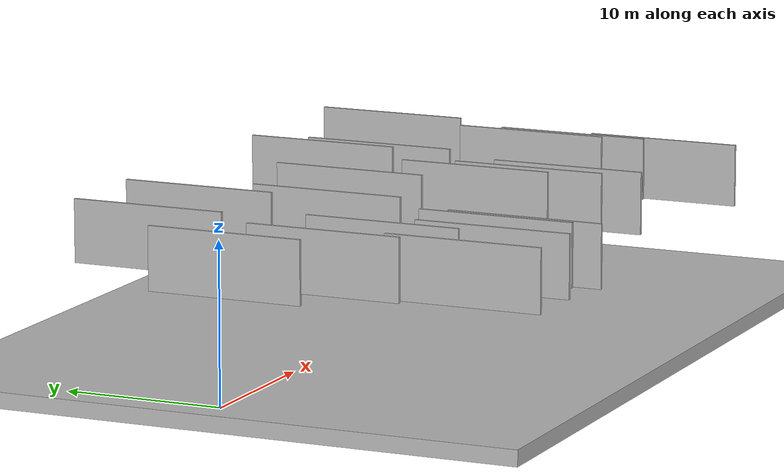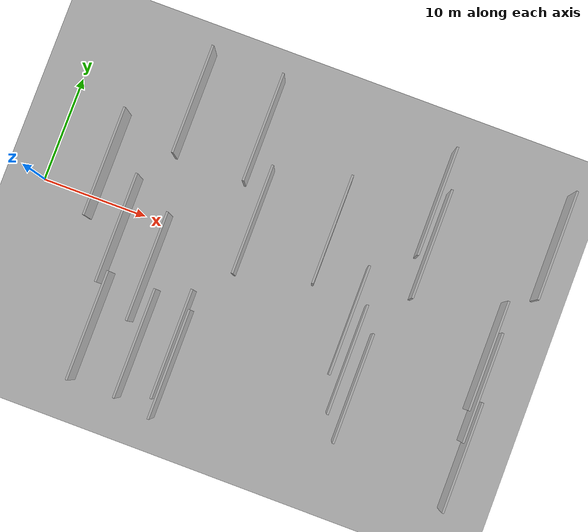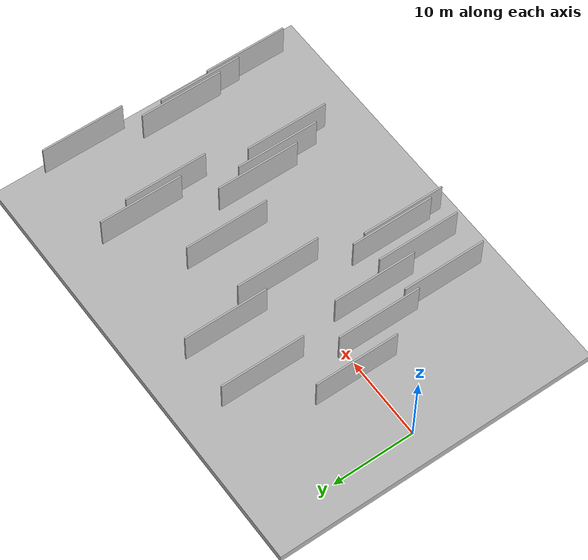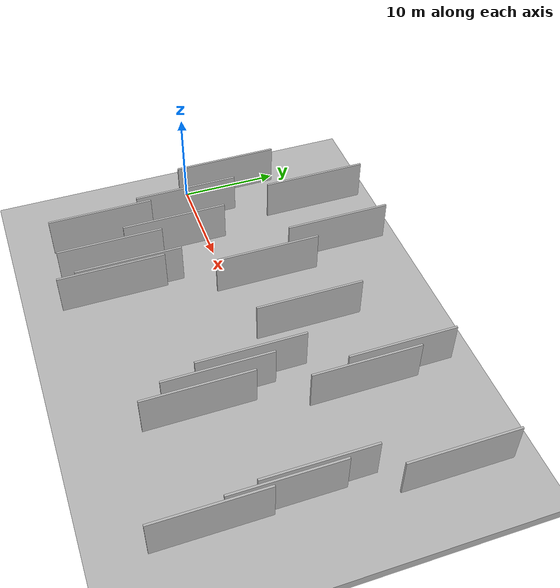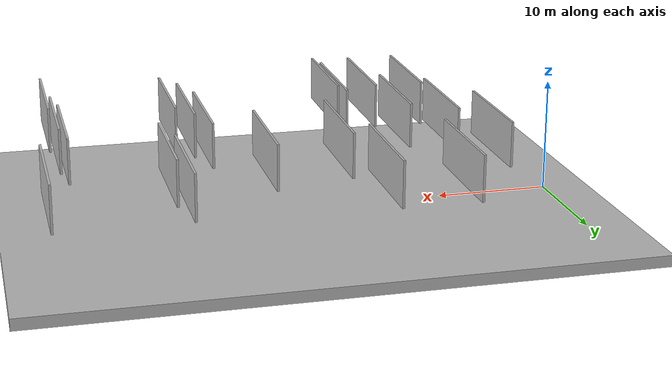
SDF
<?xml version="1.0" encoding="utf-8"?>

<sdf version="1.6">

   <world name="default">

      <gui fullscreen="0">

         <camera name="user_camera">

            <pose>-15 0 4.57585 0 0 0</pose>

            <view_controller>orbit</view_controller>

         </camera>

      </gui>

      <scene>

         <sky>

           <clouds>

             <speed>12</speed>

           </clouds>

         </sky>

         <ambient>0.4 0.4 0.4 1</ambient>

         <background>0.7 0.7 0.7 1</background>

         <shadows>1</shadows>

      </scene>

      <gravity>0 0 -9.8066</gravity>

      <magnetic_field>6e-06 2.3e-05 -4.2e-05</magnetic_field>

      <physics default="0" name="default_physics" type="ode">

         <ode>

            <solver>

               <type>quick</type>

               <iters>10</iters>

               <sor>1.0</sor>

               <use_dynamic_moi_rescaling>0</use_dynamic_moi_rescaling>

            </solver>

            <constraints>

               <cfm>0</cfm>

               <erp>0.2</erp>

               <contact_max_correcting_vel>100</contact_max_correcting_vel>

               <contact_surface_layer>0.001</contact_surface_layer>

            </constraints>

         </ode>

         <max_step_size>0.004</max_step_size>

         <real_time_factor>1</real_time_factor>

         <real_time_update_rate>250</real_time_update_rate>

      </physics>

      <light name="sun" type="directional">

         <cast_shadows>1</cast_shadows>

         <pose>0 0 10 0 0 0</pose>

         <diffuse>0.8 0.8 0.8 1</diffuse>

         <specular>0.2 0.2 0.2 1</specular>

         <attenuation>

            <range>1000</range>

            <constant>0.9</constant>

            <linear>0.01</linear>

            <quadratic>0.001</quadratic>

         </attenuation>

         <direction>-0.5 0.1 -0.9</direction>

      </light>

      <include>

         <name>ground_plane_1</name>

         <uri>model://HANNAS_ground_plane</uri>

         <pose>0 0 0  0 0 0</pose>

      </include>

      <include>

         <name>ground_plane_2</name>

         <uri>model://HANNAS_ground_plane</uri>

         <pose>100 0 0  0 0 0</pose>

      </include>

      <model name="HANNAS_wall_1">

         <static>1</static>

         <pose frame="">34.4727 9.5673 5.0 0.000000 0.000000 1.570796</pose>

         <link name="link">

            <pose frame="">0 0 2.00 0 0 0</pose>

            <collision name="collision">

               <geometry>

                  <box>

                     <size>10.00 0.2 4.00</size>

                  </box>

               </geometry>

               <max_contacts>10</max_contacts>

               <surface>

                  <contact>

                     <ode/>

                  </contact>

                  <bounce/>

                  <friction>

                     <torsional>

                        <ode/>

                     </torsional>

                     <ode/>

                  </friction>

               </surface>

            </collision>

            <visual name="visual">

               <cast_shadows>0</cast_shadows>

               <geometry>

                  <box>

                     <size>10.00 0.2 4.00</size>

                  </box>

               </geometry>

               <material>

                  <script>

                     <uri>model://HANNAS_wall/materials/scripts</uri>

                     <uri>model://HANNAS_wall/materials/textures</uri>

                     <name>vrc/HANNAS_wall</name>

                  </script>

               </material>

            </visual>

            <self_collide>0</self_collide>

            <enable_wind>0</enable_wind>

            <kinematic>0</kinematic>

         </link>

      </model>

      <model name="HANNAS_wall_2">

         <static>1</static>

         <pose frame="">43.1520 -1.4141 5.0 0.000000 0.000000 1.570796</pose>

         <link name="link">

            <pose frame="">0 0 2.00 0 0 0</pose>

            <collision name="collision">

               <geometry>

                  <box>

                     <size>10.00 0.2 4.00</size>

                  </box>

               </geometry>

               <max_contacts>10</max_contacts>

               <surface>

                  <contact>

                     <ode/>

                  </contact>

                  <bounce/>

                  <friction>

                     <torsional>

                        <ode/>

                     </torsional>

                     <ode/>

                  </friction>

               </surface>

            </collision>

            <visual name="visual">

               <cast_shadows>0</cast_shadows>

               <geometry>

                  <box>

                     <size>10.00 0.2 4.00</size>

                  </box>

               </geometry>

               <material>

                  <script>

                     <uri>model://HANNAS_wall/materials/scripts</uri>

                     <uri>model://HANNAS_wall/materials/textures</uri>

                     <name>vrc/HANNAS_wall</name>

                  </script>

               </material>

            </visual>

            <self_collide>0</self_collide>

            <enable_wind>0</enable_wind>

            <kinematic>0</kinematic>

         </link>

      </model>

      <model name="HANNAS_wall_3">

         <static>1</static>

         <pose frame="">18.0984 10.3408 5.0 0.000000 0.000000 1.570796</pose>

         <link name="link">

            <pose frame="">0 0 2.00 0 0 0</pose>

            <collision name="collision">

               <geometry>

                  <box>

                     <size>10.00 0.2 4.00</size>

                  </box>

               </geometry>

               <max_contacts>10</max_contacts>

               <surface>

                  <contact>

                     <ode/>

                  </contact>

                  <bounce/>

                  <friction>

                     <torsional>

                        <ode/>

                     </torsional>

                     <ode/>

                  </friction>

               </surface>

            </collision>

            <visual name="visual">

               <cast_shadows>0</cast_shadows>

               <geometry>

                  <box>

                     <size>10.00 0.2 4.00</size>

                  </box>

               </geometry>

               <material>

                  <script>

                     <uri>model://HANNAS_wall/materials/scripts</uri>

                     <uri>model://HANNAS_wall/materials/textures</uri>

                     <name>vrc/HANNAS_wall</name>

                  </script>

               </material>

            </visual>

            <self_collide>0</self_collide>

            <enable_wind>0</enable_wind>

            <kinematic>0</kinematic>

         </link>

      </model>

      <model name="HANNAS_wall_4">

         <static>1</static>

         <pose frame="">44.0207 -10.3526 5.0 0.000000 0.000000 1.570796</pose>

         <link name="link">

            <pose frame="">0 0 2.00 0 0 0</pose>

            <collision name="collision">

               <geometry>

                  <box>

                     <size>10.00 0.2 4.00</size>

                  </box>

               </geometry>

               <max_contacts>10</max_contacts>

               <surface>

                  <contact>

                     <ode/>

                  </contact>

                  <bounce/>

                  <friction>

                     <torsional>

                        <ode/>

                     </torsional>

                     <ode/>

                  </friction>

               </surface>

            </collision>

            <visual name="visual">

               <cast_shadows>0</cast_shadows>

               <geometry>

                  <box>

                     <size>10.00 0.2 4.00</size>

                  </box>

               </geometry>

               <material>

                  <script>

                     <uri>model://HANNAS_wall/materials/scripts</uri>

                     <uri>model://HANNAS_wall/materials/textures</uri>

                     <name>vrc/HANNAS_wall</name>

                  </script>

               </material>

            </visual>

            <self_collide>0</self_collide>

            <enable_wind>0</enable_wind>

            <kinematic>0</kinematic>

         </link>

      </model>

      <model name="HANNAS_wall_5">

         <static>1</static>

         <pose frame="">17.6958 -11.6697 5.0 0.000000 0.000000 1.570796</pose>

         <link name="link">

            <pose frame="">0 0 2.00 0 0 0</pose>

            <collision name="collision">

               <geometry>

                  <box>

                     <size>10.00 0.2 4.00</size>

                  </box>

               </geometry>

               <max_contacts>10</max_contacts>

               <surface>

                  <contact>

                     <ode/>

                  </contact>

                  <bounce/>

                  <friction>

                     <torsional>

                        <ode/>

                     </torsional>

                     <ode/>

                  </friction>

               </surface>

            </collision>

            <visual name="visual">

               <cast_shadows>0</cast_shadows>

               <geometry>

                  <box>

                     <size>10.00 0.2 4.00</size>

                  </box>

               </geometry>

               <material>

                  <script>

                     <uri>model://HANNAS_wall/materials/scripts</uri>

                     <uri>model://HANNAS_wall/materials/textures</uri>

                     <name>vrc/HANNAS_wall</name>

                  </script>

               </material>

            </visual>

            <self_collide>0</self_collide>

            <enable_wind>0</enable_wind>

            <kinematic>0</kinematic>

         </link>

      </model>

      <model name="HANNAS_wall_6">

         <static>1</static>

         <pose frame="">20.0327 2.5220 5.0 0.000000 0.000000 1.570796</pose>

         <link name="link">

            <pose frame="">0 0 2.00 0 0 0</pose>

            <collision name="collision">

               <geometry>

                  <box>

                     <size>10.00 0.2 4.00</size>

                  </box>

               </geometry>

               <max_contacts>10</max_contacts>

               <surface>

                  <contact>

                     <ode/>

                  </contact>

                  <bounce/>

                  <friction>

                     <torsional>

                        <ode/>

                     </torsional>

                     <ode/>

                  </friction>

               </surface>

            </collision>

            <visual name="visual">

               <cast_shadows>0</cast_shadows>

               <geometry>

                  <box>

                     <size>10.00 0.2 4.00</size>

                  </box>

               </geometry>

               <material>

                  <script>

                     <uri>model://HANNAS_wall/materials/scripts</uri>

                     <uri>model://HANNAS_wall/materials/textures</uri>

                     <name>vrc/HANNAS_wall</name>

                  </script>

               </material>

            </visual>

            <self_collide>0</self_collide>

            <enable_wind>0</enable_wind>

            <kinematic>0</kinematic>

         </link>

      </model>

      <model name="HANNAS_wall_7">

         <static>1</static>

         <pose frame="">9.2825 -2.2508 5.0 0.000000 0.000000 1.570796</pose>

         <link name="link">

            <pose frame="">0 0 2.00 0 0 0</pose>

            <collision name="collision">

               <geometry>

                  <box>

                     <size>10.00 0.2 4.00</size>

                  </box>

               </geometry>

               <max_contacts>10</max_contacts>

               <surface>

                  <contact>

                     <ode/>

                  </contact>

                  <bounce/>

                  <friction>

                     <torsional>

                        <ode/>

                     </torsional>

                     <ode/>

                  </friction>

               </surface>

            </collision>

            <visual name="visual">

               <cast_shadows>0</cast_shadows>

               <geometry>

                  <box>

                     <size>10.00 0.2 4.00</size>

                  </box>

               </geometry>

               <material>

                  <script>

                     <uri>model://HANNAS_wall/materials/scripts</uri>

                     <uri>model://HANNAS_wall/materials/textures</uri>

                     <name>vrc/HANNAS_wall</name>

                  </script>

               </material>

            </visual>

            <self_collide>0</self_collide>

            <enable_wind>0</enable_wind>

            <kinematic>0</kinematic>

         </link>

      </model>

      <model name="HANNAS_wall_8">

         <static>1</static>

         <pose frame="">6.2477 2.7773 5.0 0.000000 0.000000 1.570796</pose>

         <link name="link">

            <pose frame="">0 0 2.00 0 0 0</pose>

            <collision name="collision">

               <geometry>

                  <box>

                     <size>10.00 0.2 4.00</size>

                  </box>

               </geometry>

               <max_contacts>10</max_contacts>

               <surface>

                  <contact>

                     <ode/>

                  </contact>

                  <bounce/>

                  <friction>

                     <torsional>

                        <ode/>

                     </torsional>

                     <ode/>

                  </friction>

               </surface>

            </collision>

            <visual name="visual">

               <cast_shadows>0</cast_shadows>

               <geometry>

                  <box>

                     <size>10.00 0.2 4.00</size>

                  </box>

               </geometry>

               <material>

                  <script>

                     <uri>model://HANNAS_wall/materials/scripts</uri>

                     <uri>model://HANNAS_wall/materials/textures</uri>

                     <name>vrc/HANNAS_wall</name>

                  </script>

               </material>

            </visual>

            <self_collide>0</self_collide>

            <enable_wind>0</enable_wind>

            <kinematic>0</kinematic>

         </link>

      </model>

      <model name="HANNAS_wall_9">

         <static>1</static>

         <pose frame="">17.2948 -9.9569 5.0 0.000000 0.000000 1.570796</pose>

         <link name="link">

            <pose frame="">0 0 2.00 0 0 0</pose>

            <collision name="collision">

               <geometry>

                  <box>

                     <size>10.00 0.2 4.00</size>

                  </box>

               </geometry>

               <max_contacts>10</max_contacts>

               <surface>

                  <contact>

                     <ode/>

                  </contact>

                  <bounce/>

                  <friction>

                     <torsional>

                        <ode/>

                     </torsional>

                     <ode/>

                  </friction>

               </surface>

            </collision>

            <visual name="visual">

               <cast_shadows>0</cast_shadows>

               <geometry>

                  <box>

                     <size>10.00 0.2 4.00</size>

                  </box>

               </geometry>

               <material>

                  <script>

                     <uri>model://HANNAS_wall/materials/scripts</uri>

                     <uri>model://HANNAS_wall/materials/textures</uri>

                     <name>vrc/HANNAS_wall</name>

                  </script>

               </material>

            </visual>

            <self_collide>0</self_collide>

            <enable_wind>0</enable_wind>

            <kinematic>0</kinematic>

         </link>

      </model>

      <model name="HANNAS_wall_10">

         <static>1</static>

         <pose frame="">35.2996 5.9217 5.0 0.000000 0.000000 1.570796</pose>

         <link name="link">

            <pose frame="">0 0 2.00 0 0 0</pose>

            <collision name="collision">

               <geometry>

                  <box>

                     <size>10.00 0.2 4.00</size>

                  </box>

               </geometry>

               <max_contacts>10</max_contacts>

               <surface>

                  <contact>

                     <ode/>

                  </contact>

                  <bounce/>

                  <friction>

                     <torsional>

                        <ode/>

                     </torsional>

                     <ode/>

                  </friction>

               </surface>

            </collision>

            <visual name="visual">

               <cast_shadows>0</cast_shadows>

               <geometry>

                  <box>

                     <size>10.00 0.2 4.00</size>

                  </box>

               </geometry>

               <material>

                  <script>

                     <uri>model://HANNAS_wall/materials/scripts</uri>

                     <uri>model://HANNAS_wall/materials/textures</uri>

                     <name>vrc/HANNAS_wall</name>

                  </script>

               </material>

            </visual>

            <self_collide>0</self_collide>

            <enable_wind>0</enable_wind>

            <kinematic>0</kinematic>

         </link>

      </model>

      <model name="HANNAS_wall_11">

         <static>1</static>

         <pose frame="">12.9518 -4.4493 5.0 0.000000 0.000000 1.570796</pose>

         <link name="link">

            <pose frame="">0 0 2.00 0 0 0</pose>

            <collision name="collision">

               <geometry>

                  <box>

                     <size>10.00 0.2 4.00</size>

                  </box>

               </geometry>

               <max_contacts>10</max_contacts>

               <surface>

                  <contact>

                     <ode/>

                  </contact>

                  <bounce/>

                  <friction>

                     <torsional>

                        <ode/>

                     </torsional>

                     <ode/>

                  </friction>

               </surface>

            </collision>

            <visual name="visual">

               <cast_shadows>0</cast_shadows>

               <geometry>

                  <box>

                     <size>10.00 0.2 4.00</size>

                  </box>

               </geometry>

               <material>

                  <script>

                     <uri>model://HANNAS_wall/materials/scripts</uri>

                     <uri>model://HANNAS_wall/materials/textures</uri>

                     <name>vrc/HANNAS_wall</name>

                  </script>

               </material>

            </visual>

            <self_collide>0</self_collide>

            <enable_wind>0</enable_wind>

            <kinematic>0</kinematic>

         </link>

      </model>

      <model name="HANNAS_wall_12">

         <static>1</static>

         <pose frame="">9.9595 -10.9846 5.0 0.000000 0.000000 1.570796</pose>

         <link name="link">

            <pose frame="">0 0 2.00 0 0 0</pose>

            <collision name="collision">

               <geometry>

                  <box>

                     <size>10.00 0.2 4.00</size>

                  </box>

               </geometry>

               <max_contacts>10</max_contacts>

               <surface>

                  <contact>

                     <ode/>

                  </contact>

                  <bounce/>

                  <friction>

                     <torsional>

                        <ode/>

                     </torsional>

                     <ode/>

                  </friction>

               </surface>

            </collision>

            <visual name="visual">

               <cast_shadows>0</cast_shadows>

               <geometry>

                  <box>

                     <size>10.00 0.2 4.00</size>

                  </box>

               </geometry>

               <material>

                  <script>

                     <uri>model://HANNAS_wall/materials/scripts</uri>

                     <uri>model://HANNAS_wall/materials/textures</uri>

                     <name>vrc/HANNAS_wall</name>

                  </script>

               </material>

            </visual>

            <self_collide>0</self_collide>

            <enable_wind>0</enable_wind>

            <kinematic>0</kinematic>

         </link>

      </model>

      <model name="HANNAS_wall_13">

         <static>1</static>

         <pose frame="">26.8131 4.1192 5.0 0.000000 0.000000 1.570796</pose>

         <link name="link">

            <pose frame="">0 0 2.00 0 0 0</pose>

            <collision name="collision">

               <geometry>

                  <box>

                     <size>10.00 0.2 4.00</size>

                  </box>

               </geometry>

               <max_contacts>10</max_contacts>

               <surface>

                  <contact>

                     <ode/>

                  </contact>

                  <bounce/>

                  <friction>

                     <torsional>

                        <ode/>

                     </torsional>

                     <ode/>

                  </friction>

               </surface>

            </collision>

            <visual name="visual">

               <cast_shadows>0</cast_shadows>

               <geometry>

                  <box>

                     <size>10.00 0.2 4.00</size>

                  </box>

               </geometry>

               <material>

                  <script>

                     <uri>model://HANNAS_wall/materials/scripts</uri>

                     <uri>model://HANNAS_wall/materials/textures</uri>

                     <name>vrc/HANNAS_wall</name>

                  </script>

               </material>

            </visual>

            <self_collide>0</self_collide>

            <enable_wind>0</enable_wind>

            <kinematic>0</kinematic>

         </link>

      </model>

      <model name="HANNAS_wall_14">

         <static>1</static>

         <pose frame="">45.4648 9.5685 5.0 0.000000 0.000000 1.570796</pose>

         <link name="link">

            <pose frame="">0 0 2.00 0 0 0</pose>

            <collision name="collision">

               <geometry>

                  <box>

                     <size>10.00 0.2 4.00</size>

                  </box>

               </geometry>

               <max_contacts>10</max_contacts>

               <surface>

                  <contact>

                     <ode/>

                  </contact>

                  <bounce/>

                  <friction>

                     <torsional>

                        <ode/>

                     </torsional>

                     <ode/>

                  </friction>

               </surface>

            </collision>

            <visual name="visual">

               <cast_shadows>0</cast_shadows>

               <geometry>

                  <box>

                     <size>10.00 0.2 4.00</size>

                  </box>

               </geometry>

               <material>

                  <script>

                     <uri>model://HANNAS_wall/materials/scripts</uri>

                     <uri>model://HANNAS_wall/materials/textures</uri>

                     <name>vrc/HANNAS_wall</name>

                  </script>

               </material>

            </visual>

            <self_collide>0</self_collide>

            <enable_wind>0</enable_wind>

            <kinematic>0</kinematic>

         </link>

      </model>

      <model name="HANNAS_wall_15">

         <static>1</static>

         <pose frame="">33.2402 -8.0857 5.0 0.000000 0.000000 1.570796</pose>

         <link name="link">

            <pose frame="">0 0 2.00 0 0 0</pose>

            <collision name="collision">

               <geometry>

                  <box>

                     <size>10.00 0.2 4.00</size>

                  </box>

               </geometry>

               <max_contacts>10</max_contacts>

               <surface>

                  <contact>

                     <ode/>

                  </contact>

                  <bounce/>

                  <friction>

                     <torsional>

                        <ode/>

                     </torsional>

                     <ode/>

                  </friction>

               </surface>

            </collision>

            <visual name="visual">

               <cast_shadows>0</cast_shadows>

               <geometry>

                  <box>

                     <size>10.00 0.2 4.00</size>

                  </box>

               </geometry>

               <material>

                  <script>

                     <uri>model://HANNAS_wall/materials/scripts</uri>

                     <uri>model://HANNAS_wall/materials/textures</uri>

                     <name>vrc/HANNAS_wall</name>

                  </script>

               </material>

            </visual>

            <self_collide>0</self_collide>

            <enable_wind>0</enable_wind>

            <kinematic>0</kinematic>

         </link>

      </model>

      <model name="HANNAS_wall_16">

         <static>1</static>

         <pose frame="">11.5092 10.5011 5.0 0.000000 0.000000 1.570796</pose>

         <link name="link">

            <pose frame="">0 0 2.00 0 0 0</pose>

            <collision name="collision">

               <geometry>

                  <box>

                     <size>10.00 0.2 4.00</size>

                  </box>

               </geometry>

               <max_contacts>10</max_contacts>

               <surface>

                  <contact>

                     <ode/>

                  </contact>

                  <bounce/>

                  <friction>

                     <torsional>

                        <ode/>

                     </torsional>

                     <ode/>

                  </friction>

               </surface>

            </collision>

            <visual name="visual">

               <cast_shadows>0</cast_shadows>

               <geometry>

                  <box>

                     <size>10.00 0.2 4.00</size>

                  </box>

               </geometry>

               <material>

                  <script>

                     <uri>model://HANNAS_wall/materials/scripts</uri>

                     <uri>model://HANNAS_wall/materials/textures</uri>

                     <name>vrc/HANNAS_wall</name>

                  </script>

               </material>

            </visual>

            <self_collide>0</self_collide>

            <enable_wind>0</enable_wind>

            <kinematic>0</kinematic>

         </link>

      </model>

      <model name="HANNAS_wall_17">

         <static>1</static>

         <pose frame="">14.2825 -11.0219 5.0 0.000000 0.000000 1.570796</pose>

         <link name="link">

            <pose frame="">0 0 2.00 0 0 0</pose>

            <collision name="collision">

               <geometry>

                  <box>

                     <size>10.00 0.2 4.00</size>

                  </box>

               </geometry>

               <max_contacts>10</max_contacts>

               <surface>

                  <contact>

                     <ode/>

                  </contact>

                  <bounce/>

                  <friction>

                     <torsional>

                        <ode/>

                     </torsional>

                     <ode/>

                  </friction>

               </surface>

            </collision>

            <visual name="visual">

               <cast_shadows>0</cast_shadows>

               <geometry>

                  <box>

                     <size>10.00 0.2 4.00</size>

                  </box>

               </geometry>

               <material>

                  <script>

                     <uri>model://HANNAS_wall/materials/scripts</uri>

                     <uri>model://HANNAS_wall/materials/textures</uri>

                     <name>vrc/HANNAS_wall</name>

                  </script>

               </material>

            </visual>

            <self_collide>0</self_collide>

            <enable_wind>0</enable_wind>

            <kinematic>0</kinematic>

         </link>

      </model>

      <model name="HANNAS_wall_18">

         <static>1</static>

         <pose frame="">30.8994 -2.7188 5.0 0.000000 0.000000 1.570796</pose>

         <link name="link">

            <pose frame="">0 0 2.00 0 0 0</pose>

            <collision name="collision">

               <geometry>

                  <box>

                     <size>10.00 0.2 4.00</size>

                  </box>

               </geometry>

               <max_contacts>10</max_contacts>

               <surface>

                  <contact>

                     <ode/>

                  </contact>

                  <bounce/>

                  <friction>

                     <torsional>

                        <ode/>

                     </torsional>

                     <ode/>

                  </friction>

               </surface>

            </collision>

            <visual name="visual">

               <cast_shadows>0</cast_shadows>

               <geometry>

                  <box>

                     <size>10.00 0.2 4.00</size>

                  </box>

               </geometry>

               <material>

                  <script>

                     <uri>model://HANNAS_wall/materials/scripts</uri>

                     <uri>model://HANNAS_wall/materials/textures</uri>

                     <name>vrc/HANNAS_wall</name>

                  </script>

               </material>

            </visual>

            <self_collide>0</self_collide>

            <enable_wind>0</enable_wind>

            <kinematic>0</kinematic>

         </link>

      </model>

      <model name="HANNAS_wall_19">

         <static>1</static>

         <pose frame="">31.9174 -5.9419 5.0 0.000000 0.000000 1.570796</pose>

         <link name="link">

            <pose frame="">0 0 2.00 0 0 0</pose>

            <collision name="collision">

               <geometry>

                  <box>

                     <size>10.00 0.2 4.00</size>

                  </box>

               </geometry>

               <max_contacts>10</max_contacts>

               <surface>

                  <contact>

                     <ode/>

                  </contact>

                  <bounce/>

                  <friction>

                     <torsional>

                        <ode/>

                     </torsional>

                     <ode/>

                  </friction>

               </surface>

            </collision>

            <visual name="visual">

               <cast_shadows>0</cast_shadows>

               <geometry>

                  <box>

                     <size>10.00 0.2 4.00</size>

                  </box>

               </geometry>

               <material>

                  <script>

                     <uri>model://HANNAS_wall/materials/scripts</uri>

                     <uri>model://HANNAS_wall/materials/textures</uri>

                     <name>vrc/HANNAS_wall</name>

                  </script>

               </material>

            </visual>

            <self_collide>0</self_collide>

            <enable_wind>0</enable_wind>

            <kinematic>0</kinematic>

         </link>

      </model>

      <model name="HANNAS_wall_20">

         <static>1</static>

         <pose frame="">43.6114 -4.1679 5.0 0.000000 0.000000 1.570796</pose>

         <link name="link">

            <pose frame="">0 0 2.00 0 0 0</pose>

            <collision name="collision">

               <geometry>

                  <box>

                     <size>10.00 0.2 4.00</size>

                  </box>

               </geometry>

               <max_contacts>10</max_contacts>

               <surface>

                  <contact>

                     <ode/>

                  </contact>

                  <bounce/>

                  <friction>

                     <torsional>

                        <ode/>

                     </torsional>

                     <ode/>

                  </friction>

               </surface>

            </collision>

            <visual name="visual">

               <cast_shadows>0</cast_shadows>

               <geometry>

                  <box>

                     <size>10.00 0.2 4.00</size>

                  </box>

               </geometry>

               <material>

                  <script>

                     <uri>model://HANNAS_wall/materials/scripts</uri>

                     <uri>model://HANNAS_wall/materials/textures</uri>

                     <name>vrc/HANNAS_wall</name>

                  </script>

               </material>

            </visual>

            <self_collide>0</self_collide>

            <enable_wind>0</enable_wind>

            <kinematic>0</kinematic>

         </link>

      </model>

   </world>

</sdf>

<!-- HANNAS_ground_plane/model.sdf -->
<sdf version="1.4">
<model name="HANNAS_ground_plane">
  <static>true</static>
    <link name="link">
      <collision name="collision">
        <geometry>
          <plane>
            <normal>0 0 1</normal>
            <size>1000 1000</size>
          </plane>
        </geometry>
        <surface>
          <friction>
            <ode>
              <mu>100</mu>
              <mu2>50</mu2>
            </ode>
          </friction>
        </surface>
      </collision>
      <visual name="visual">
        <cast_shadows>false</cast_shadows>
        <geometry>
          <plane>
            <normal>0 0 1</normal>
            <size>1000 1000</size>
          </plane>
        </geometry>
        <material>
          <script>
            <uri>model://HANNAS_ground_plane/materials/scripts/HANNAS_ground_plane.material</uri>
	    <uri>model://HANNAS_ground_plane/materials/textures</uri>
            <name>HANNASGroundPlane/Image</name>
          </script>
        </material>
      </visual>
    </link>
  </model>
</sdf>
